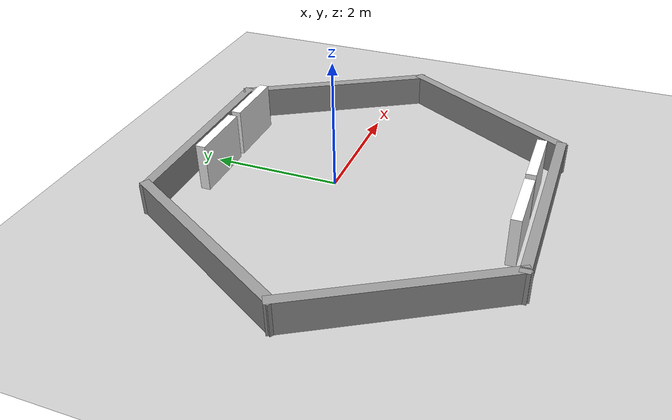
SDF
<sdf version="1.7">
 <world name="default">
  <light name="sun" type="directional">
   <pose>0 0 10 0 -0 0</pose>
   <diffuse>0.8 0.8 0.8 1</diffuse>
   <specular>0.2 0.2 0.2 1</specular>
   <attenuation>
    <range>1000</range>
    <constant>0.9</constant>
    <linear>0.01</linear>
    <quadratic>0.001</quadratic>
   </attenuation>
   <direction>-0.5 0.1 -0.9</direction>
   <spot><inner_angle>0</inner_angle><outer_angle>0</outer_angle><falloff>0</falloff></spot>
  </light>
  <model name="ground_plane">
   <static>1</static>
   <link name="link">
    <collision name="collision">
     <geometry><plane><normal>0 0 1</normal><size>100 100</size></plane></geometry>
     <surface><friction><ode><mu>100</mu><mu2>50</mu2></ode></friction></surface>
    </collision>
    <visual name="visual">
     <cast_shadows>0</cast_shadows>
     <geometry><plane><normal>0 0 1</normal><size>100 100</size></plane></geometry>
     <material>
      <script><uri>file://media/materials/scripts/gazebo.material</uri><name>Gazebo/Grey</name></script>
     </material>
    </visual>
   </link>
  </model>
  <gravity>0 0 -9.8</gravity>
  <magnetic_field>6e-06 2.3e-05 -4.2e-05</magnetic_field>
  <atmosphere type="adiabatic"/>
  <physics type="ode">
   <max_step_size>0.001</max_step_size>
   <real_time_factor>1</real_time_factor>
   <real_time_update_rate>1000</real_time_update_rate>
  </physics>
  <scene><ambient>0.4 0.4 0.4 1</ambient><background>0.7 0.7 0.7 1</background><shadows>1</shadows></scene>
  <audio><device>default</device></audio>
  <spherical_coordinates>
   <surface_model>EARTH_WGS84</surface_model>
   <latitude_deg>0</latitude_deg>
   <longitude_deg>0</longitude_deg>
   <elevation>0</elevation>
   <heading_deg>0</heading_deg>
  </spherical_coordinates>
  <model name="my_POPY_world">
   <pose>-0.053197 -0.45959 0 0 -0 0</pose>
   <link name="Wall_0">
    <collision name="Wall_0_Collision">
     <geometry><box><size>3.25 0.15 0.5</size></box></geometry>
     <pose>0 0 0.25 0 -0 0</pose>
    </collision>
    <visual name="Wall_0_Visual">
     <pose>0 0 0.25 0 -0 0</pose>
     <geometry><box><size>3.25 0.15 0.5</size></box></geometry>
     <material>
      <script><uri>file://media/materials/scripts/gazebo.material</uri><name>Gazebo/Grey</name></script>
      <ambient>1 1 1 1</ambient>
     </material>
     <meta><layer>0</layer></meta>
    </visual>
    <pose>0.004965 2.68459 0 0 -0 0</pose>
   </link>
   <link name="Wall_1">
    <collision name="Wall_1_Collision">
     <geometry><box><size>3.25 0.15 0.5</size></box></geometry>
     <pose>0 0 0.25 0 -0 0</pose>
    </collision>
    <visual name="Wall_1_Visual">
     <pose>0 0 0.25 0 -0 0</pose>
     <geometry><box><size>3.25 0.15 0.5</size></box></geometry>
     <material>
      <script><uri>file://media/materials/scripts/gazebo.material</uri><name>Gazebo/Grey</name></script>
      <ambient>1 1 1 1</ambient>
     </material>
     <meta><layer>0</layer></meta>
    </visual>
    <pose>2.32997 1.34209 0 0 -0 -1.04725</pose>
   </link>
   <link name="Wall_2">
    <collision name="Wall_2_Collision">
     <geometry><box><size>3.25 0.15 0.5</size></box></geometry>
     <pose>0 0 0.25 0 -0 0</pose>
    </collision>
    <visual name="Wall_2_Visual">
     <pose>0 0 0.25 0 -0 0</pose>
     <geometry><box><size>3.25 0.15 0.5</size></box></geometry>
     <material>
      <script><uri>file://media/materials/scripts/gazebo.material</uri><name>Gazebo/Grey</name></script>
      <ambient>1 1 1 1</ambient>
     </material>
     <meta><layer>0</layer></meta>
    </visual>
    <pose>2.32997 -1.34241 0 0 -0 -2.0945</pose>
   </link>
   <link name="Wall_3">
    <collision name="Wall_3_Collision">
     <geometry><box><size>3.26 0.15 0.5</size></box></geometry>
     <pose>0 0 0.25 0 -0 0</pose>
    </collision>
    <visual name="Wall_3_Visual">
     <pose>0 0 0.25 0 -0 0</pose>
     <geometry><box><size>3.26 0.15 0.5</size></box></geometry>
     <material>
      <script><uri>file://media/materials/scripts/gazebo.material</uri><name>Gazebo/Grey</name></script>
      <ambient>1 1 1 1</ambient>
     </material>
     <meta><layer>0</layer></meta>
    </visual>
    <pose>-3.5e-05 -2.68441 0 0 -0 3.14159</pose>
   </link>
   <link name="Wall_4">
    <collision name="Wall_4_Collision">
     <geometry><box><size>3.24972 0.15 0.5</size></box></geometry>
     <pose>0 0 0.25 0 -0 0</pose>
    </collision>
    <visual name="Wall_4_Visual">
     <pose>0 0 0.25 0 -0 0</pose>
     <geometry><box><size>3.24972 0.15 0.5</size></box></geometry>
     <material>
      <script><uri>file://media/materials/scripts/gazebo.material</uri><name>Gazebo/Grey</name></script>
      <ambient>1 1 1 1</ambient>
     </material>
     <meta><layer>0</layer></meta>
    </visual>
    <pose>-2.33004 -1.34241 0 0 -0 2.0945</pose>
   </link>
   <link name="Wall_5">
    <collision name="Wall_5_Collision">
     <geometry><box><size>3.25529 0.15 0.5</size></box></geometry>
     <pose>0 0 0.25 0 -0 0</pose>
    </collision>
    <visual name="Wall_5_Visual">
     <pose>0 0 0.25 0 -0 0</pose>
     <geometry><box><size>3.25529 0.15 0.5</size></box></geometry>
     <material>
      <script><uri>file://media/materials/scripts/gazebo.material</uri><name>Gazebo/Grey</name></script>
      <ambient>1 1 1 1</ambient>
     </material>
     <meta><layer>0</layer></meta>
    </visual>
    <pose>-2.32504 1.34209 0 0 -0 1.04446</pose>
   </link>
   <static>1</static>
  </model>
  <model name="Painter1">
   <pose>0.551359 3.6484 0 0 -0 0</pose>
   <link name="Wall_0">
    <collision name="Wall_0_Collision">
     <geometry><box><size>1 0.15 0.75</size></box></geometry>
     <pose>0 0 0.375 0 -0 0</pose>
    </collision>
    <visual name="Wall_0_Visual">
     <pose>0 0 0.375 0 -0 0</pose>
     <geometry><box><size>1 0.15 0.75</size></box></geometry>
     <material>
      <script>
       <uri>model://Painter1/materials/scripts</uri>
       <uri>model://Painter1/materials/textures/</uri>
       <name>Painter1</name>
      </script>
      <ambient>1 1 1 1</ambient>
     </material>
     <meta><layer>0</layer></meta>
    </visual>
    <pose>-0.8575 -1.8575 0 0 -0 0</pose>
   </link>
   <static>1</static>
  </model>
  <model name="Painter2">
   <pose>2.82714 3.88477 0 0 -0 0</pose>
   <link name="Wall_0">
    <collision name="Wall_0_Collision">
     <geometry><box><size>1 0.15 0.75</size></box></geometry>
     <pose>0 0 0.375 0 -0 0</pose>
    </collision>
    <visual name="Wall_0_Visual">
     <pose>0 0 0.375 0 -0 0</pose>
     <geometry><box><size>1 0.15 0.75</size></box></geometry>
     <material>
      <script>
       <uri>model://Painter2/materials/scripts</uri>
       <uri>model://Painter2/materials/textures/</uri>
       <name>Painter2</name>
      </script>
      <ambient>1 1 1 1</ambient>
     </material>
     <meta><layer>0</layer></meta>
    </visual>
    <pose>-2.0225 -2.0875 0 0 -0 0</pose>
   </link>
   <static>1</static>
  </model>
  <model name="Painter1_0">
   <pose>1.46634 -1.03091 0 0 -0 0</pose>
   <link name="Wall_0">
    <collision name="Wall_0_Collision">
     <geometry><box><size>1 0.15 0.75</size></box></geometry>
     <pose>0 0 0.375 0 -0 0</pose>
    </collision>
    <visual name="Wall_0_Visual">
     <pose>0 0 0.375 0 -0 0</pose>
     <geometry><box><size>1 0.15 0.75</size></box></geometry>
     <material>
      <script>
       <uri>model://Painter1/materials/scripts</uri>
       <uri>model://Painter1/materials/textures/</uri>
       <name>Painter1</name>
      </script>
      <ambient>1 1 1 1</ambient>
     </material>
     <meta><layer>0</layer></meta>
    </visual>
    <pose>-0.8575 -1.8575 0 0 -0 0</pose>
   </link>
   <static>1</static>
  </model>
  <model name="Painter2_0">
   <pose>1.51677 -0.802552 0 0 -0 0</pose>
   <link name="Wall_0">
    <collision name="Wall_0_Collision">
     <geometry><box><size>1 0.15 0.75</size></box></geometry>
     <pose>0 0 0.375 0 -0 0</pose>
    </collision>
    <visual name="Wall_0_Visual">
     <pose>0 0 0.375 0 -0 0</pose>
     <geometry><box><size>1 0.15 0.75</size></box></geometry>
     <material>
      <script>
       <uri>model://Painter2/materials/scripts</uri>
       <uri>model://Painter2/materials/textures/</uri>
       <name>Painter2</name>
      </script>
      <ambient>1 1 1 1</ambient>
     </material>
     <meta><layer>0</layer></meta>
    </visual>
    <pose>-2.0225 -2.0875 0 0 -0 0</pose>
   </link>
   <static>1</static>
  </model>
 </world>
</sdf>
